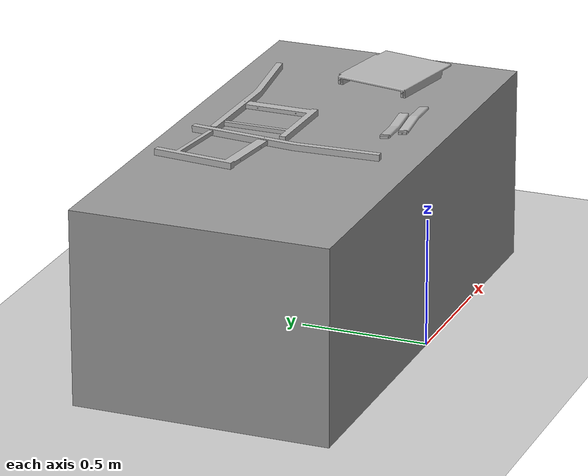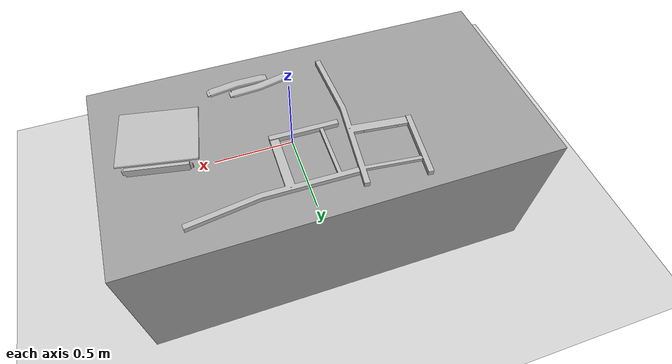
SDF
<sdf version="1.6">
 <world name="default">
  <light name="sun" type="directional">
   <pose>0 0 10 0 -0 0</pose>
   <diffuse>0.8 0.8 0.8 1</diffuse>
   <specular>0.2 0.2 0.2 1</specular>
   <attenuation>
    <range>1000</range>
    <constant>0.9</constant>
    <linear>0.01</linear>
    <quadratic>0.001</quadratic>
   </attenuation>
   <direction>-0.5 0.1 -0.9</direction>
  </light>
  <model name="ground_plane">
   <static>1</static>
   <link name="link">
    <collision name="collision">
     <geometry><plane><normal>0 0 1</normal><size>100 100</size></plane></geometry>
     <surface>
      <contact><collide_bitmask>65535</collide_bitmask></contact>
      <friction><ode><mu>100</mu><mu2>50</mu2></ode></friction>
     </surface>
    </collision>
    <visual name="visual">
     <cast_shadows>0</cast_shadows>
     <geometry><plane><normal>0 0 1</normal><size>100 100</size></plane></geometry>
     <material>
      <script><uri>file://media/materials/scripts/gazebo.material</uri><name>Gazebo/Grey</name></script>
     </material>
    </visual>
   </link>
  </model>
  <gravity>0 0 -9.8</gravity>
  <magnetic_field>6e-06 2.3e-05 -4.2e-05</magnetic_field>
  <atmosphere type="adiabatic"/>
  <physics name="default_physics" default="0" type="ode">
   <max_step_size>0.001</max_step_size>
   <real_time_factor>1</real_time_factor>
   <real_time_update_rate>1000</real_time_update_rate>
  </physics>
  <scene><ambient>0.4 0.4 0.4 1</ambient><background>0.7 0.7 0.7 1</background><shadows>1</shadows></scene>
  <audio><device>default</device></audio>
  <spherical_coordinates>
   <surface_model>EARTH_WGS84</surface_model>
   <latitude_deg>0</latitude_deg>
   <longitude_deg>0</longitude_deg>
   <elevation>0</elevation>
   <heading_deg>0</heading_deg>
  </spherical_coordinates>
  <model name="cafe_box">
   <link name="link_1">
    <inertial>
     <mass>1</mass>
     <inertia>
      <ixx>0.166667</ixx>
      <ixy>0</ixy>
      <ixz>0</ixz>
      <iyy>0.166667</iyy>
      <iyz>0</iyz>
      <izz>0.166667</izz>
     </inertia>
    </inertial>
    <visual name="visual">
     <geometry><box><size>2 1 0.8</size></box></geometry>
     <material>
      <lighting>1</lighting>
      <script><uri>file://media/materials/scripts/gazebo.material</uri><name>Gazebo/Grey</name></script>
      <shader type="vertex"><normal_map>__default__</normal_map></shader>
      <ambient>0.3 0.3 0.3 1</ambient>
      <diffuse>0.7 0.7 0.7 1</diffuse>
      <specular>0.01 0.01 0.01 1</specular>
      <emissive>0 0 0 1</emissive>
     </material>
    </visual>
    <collision name="collision">
     <geometry><box><size>2 1 0.8</size></box></geometry>
     <surface>
      <friction>
       <ode><mu>1</mu><mu2>1</mu2><fdir1>0 0 0</fdir1><slip1>0</slip1><slip2>0</slip2></ode>
       <torsional>
        <coefficient>1</coefficient>
        <patch_radius>0</patch_radius>
        <surface_radius>0</surface_radius>
        <use_patch_radius>1</use_patch_radius>
        <ode><slip>0</slip></ode>
       </torsional>
      </friction>
      <bounce><restitution_coefficient>0</restitution_coefficient><threshold>1e+06</threshold></bounce>
      <contact>
       <collide_without_contact>0</collide_without_contact>
       <collide_without_contact_bitmask>1</collide_without_contact_bitmask>
       <collide_bitmask>1</collide_bitmask>
       <ode>
        <soft_cfm>0</soft_cfm>
        <soft_erp>0.2</soft_erp>
        <kp>1e+13</kp>
        <kd>1</kd>
        <max_vel>0.01</max_vel>
        <min_depth>0</min_depth>
       </ode>
       <bullet>
        <split_impulse>1</split_impulse>
        <split_impulse_penetration_threshold>-0.01</split_impulse_penetration_threshold>
        <soft_cfm>0</soft_cfm>
        <soft_erp>0.2</soft_erp>
        <kp>1e+13</kp>
        <kd>1</kd>
       </bullet>
      </contact>
     </surface>
    </collision>
   </link>
   <static>1</static>
   <pose>0.000211 0.499807 0.358622 -0.000217 2.7e-05 -1.5e-05</pose>
  </model>
  <model name="chair_ivar_part0">
   <link name="mesh_link0">
    <visual name="visual0">
     <geometry>
      <mesh><uri>file://ivar_chair/meshes/0.stl</uri><scale>0.00065 0.00065 0.00065</scale></mesh>
     </geometry>
    </visual>
    <collision name="collision0">
     <geometry>
      <mesh><uri>file://ivar_chair/meshes/0.stl</uri><scale>0.00065 0.00065 0.00065</scale></mesh>
     </geometry>
    </collision>
    <inertial>
     <inertia><ixx>1</ixx><ixy>0</ixy><ixz>0</ixz><iyy>1</iyy><iyz>0</iyz><izz>1</izz></inertia>
     <mass>1</mass>
    </inertial>
   </link>
   <pose>-0.240275 0.541852 0.771002 -0.00129 1.57058 -1.68211</pose>
  </model>
  <model name="chair_ivar_part1">
   <link name="mesh_link1">
    <visual name="visual1">
     <geometry>
      <mesh><uri>file://ivar_chair/meshes/1.stl</uri><scale>0.00065 0.00065 0.00065</scale></mesh>
     </geometry>
    </visual>
    <collision name="collision1">
     <geometry>
      <mesh><uri>file://ivar_chair/meshes/1.stl</uri><scale>0.00065 0.00065 0.00065</scale></mesh>
     </geometry>
    </collision>
    <inertial>
     <inertia><ixx>1</ixx><ixy>0</ixy><ixz>0</ixz><iyy>1</iyy><iyz>0</iyz><izz>1</izz></inertia>
     <mass>1</mass>
    </inertial>
   </link>
   <pose>0.303283 0.710534 0.770941 -1.68626 1.57058 -1.69823</pose>
  </model>
  <model name="chair_ivar_part2">
   <link name="mesh_link2">
    <visual name="visual2">
     <geometry>
      <mesh><uri>file://ivar_chair/meshes/2.stl</uri><scale>0.00065 0.00065 0.00065</scale></mesh>
     </geometry>
    </visual>
    <collision name="collision2">
     <geometry>
      <mesh><uri>file://ivar_chair/meshes/2.stl</uri><scale>0.00065 0.00065 0.00065</scale></mesh>
     </geometry>
    </collision>
    <inertial>
     <inertia><ixx>1</ixx><ixy>0</ixy><ixz>0</ixz><iyy>1</iyy><iyz>0</iyz><izz>1</izz></inertia>
     <mass>1</mass>
    </inertial>
   </link>
   <pose>0.199581 0.211428 0.772422 -1.4902 0.037611 0.098629</pose>
  </model>
  <model name="chair_ivar_part3">
   <link name="mesh_link3">
    <visual name="visual3">
     <geometry>
      <mesh><uri>file://ivar_chair/meshes/3.stl</uri><scale>0.00065 0.00065 0.00065</scale></mesh>
     </geometry>
    </visual>
    <collision name="collision3">
     <geometry>
      <mesh><uri>file://ivar_chair/meshes/3.stl</uri><scale>0.00065 0.00065 0.00065</scale></mesh>
     </geometry>
    </collision>
    <inertial>
     <inertia><ixx>1</ixx><ixy>0</ixy><ixz>0</ixz><iyy>1</iyy><iyz>0</iyz><izz>1</izz></inertia>
     <mass>1</mass>
    </inertial>
   </link>
   <pose>0.300824 0.172032 0.773436 1.5662 4.2e-05 0.071909</pose>
  </model>
  <model name="chair_ivar_part4">
   <link name="chair_ivar_part4::mesh_link4">
    <visual name="visual4">
     <geometry>
      <mesh><uri>file://ivar_chair/meshes/4.stl</uri><scale>0.00065 0.00065 0.00065</scale></mesh>
     </geometry>
    </visual>
    <collision name="collision4">
     <geometry>
      <mesh><uri>file://ivar_chair/meshes/4.stl</uri><scale>0.00065 0.00065 0.00065</scale></mesh>
     </geometry>
    </collision>
    <inertial>
     <inertia><ixx>1</ixx><ixy>0</ixy><ixz>0</ixz><iyy>1</iyy><iyz>0</iyz><izz>1</izz></inertia>
     <mass>1</mass>
    </inertial>
   </link>
   <pose>0.707026 0.408463 0.784005 0.004306 -2.1e-05 -0.181346</pose>
  </model>
 </world>
</sdf>
